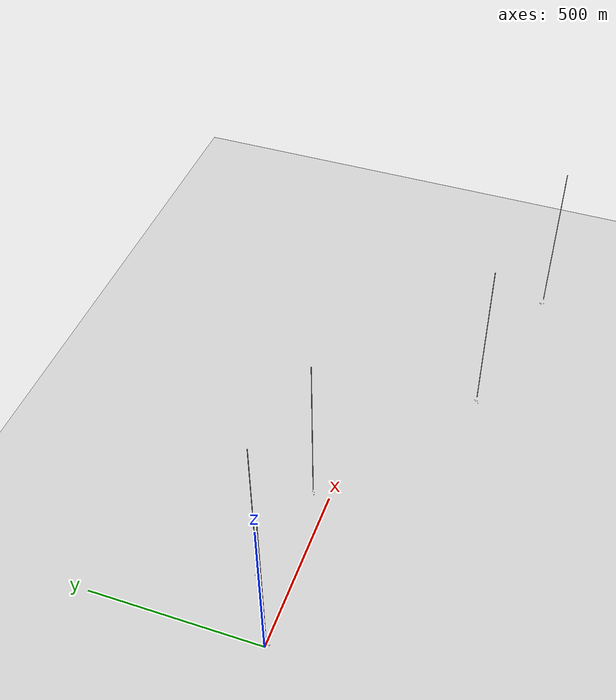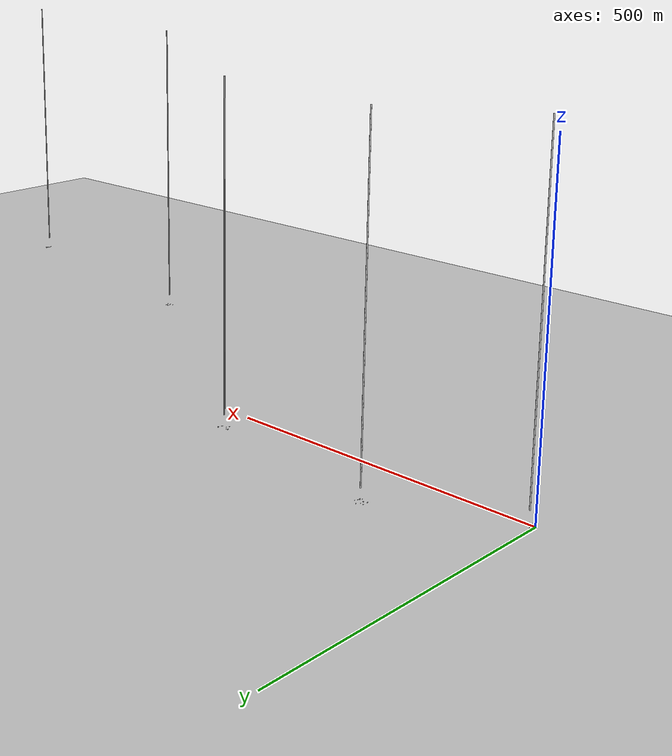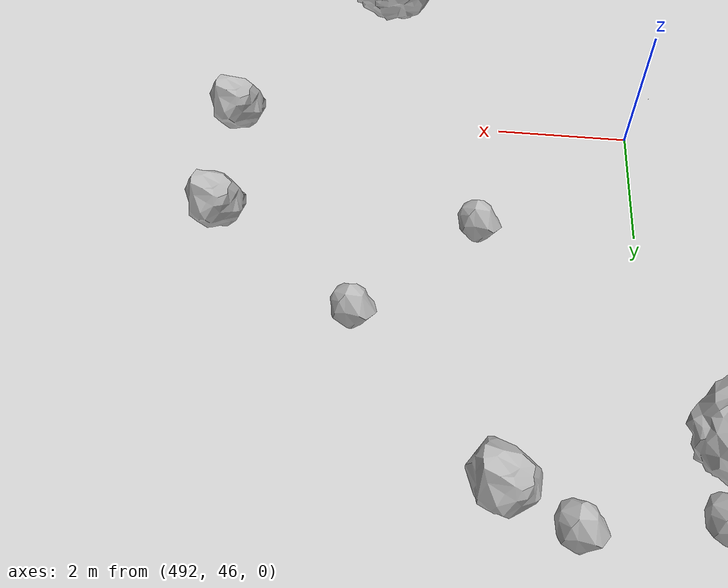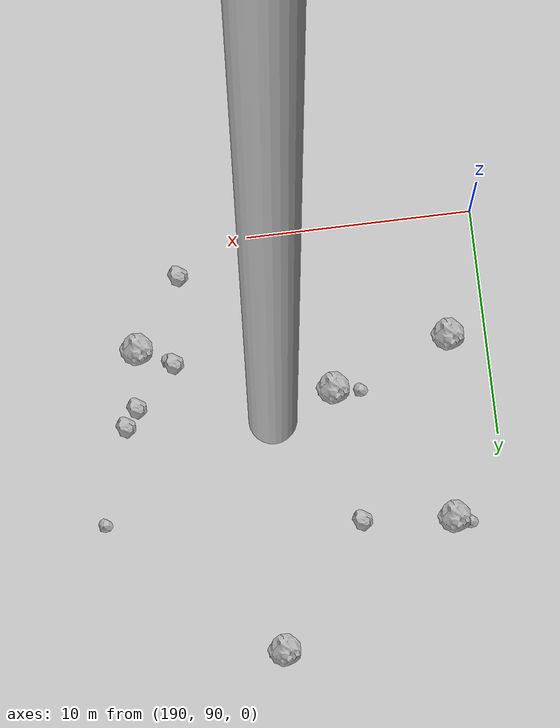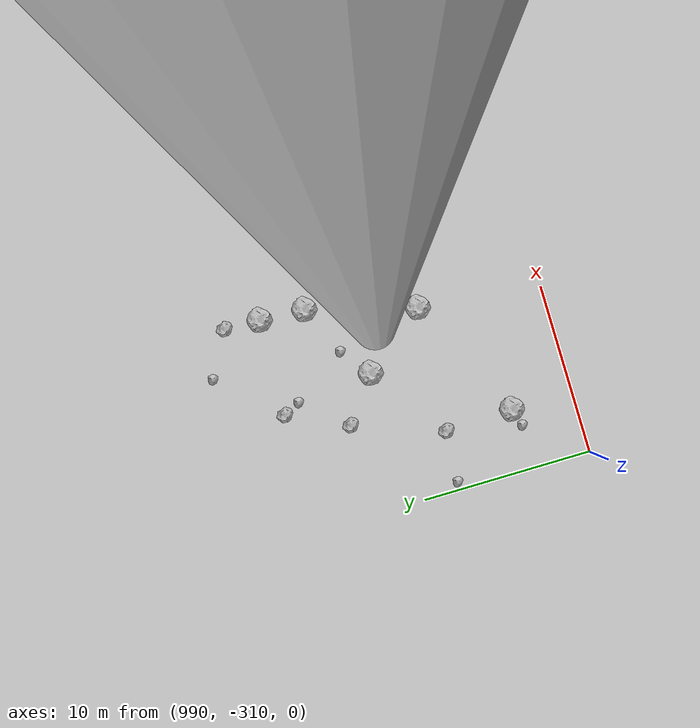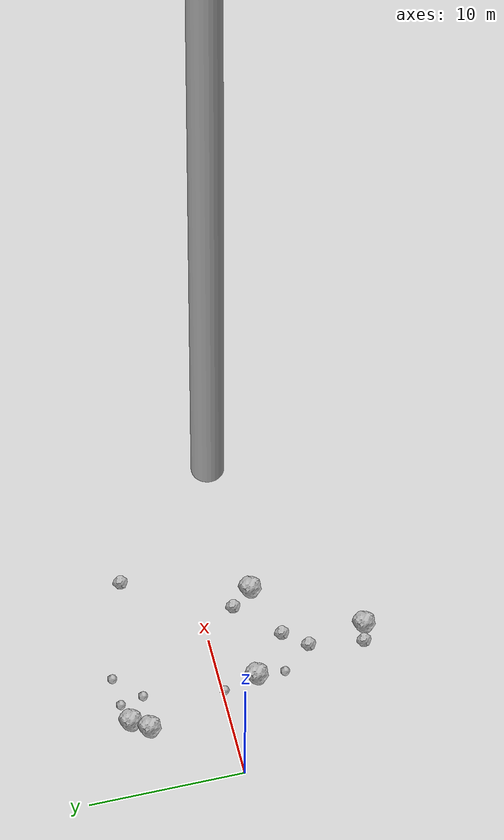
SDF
<?xml version="1.0" ?>
<sdf version="1.6">
  <world name="default">

    <include>
      <uri>model://custom_ground</uri>
    </include>

    <include>
      <uri>model://sun</uri>
    </include>

    <spherical_coordinates>
      <surface_model>EARTH_WGS84</surface_model>
      <latitude_deg>38.161479</latitude_deg>
      <longitude_deg>-122.454630</longitude_deg>
      <elevation>488.0</elevation>
      <heading_deg>90</heading_deg>
    </spherical_coordinates>

    <model name="rock1_0_0">
      <include>
        <uri>model://rock1</uri>
        <pose>4.4730669242563454 5.145440159274859 0.5 0 0 0</pose>
      </include>
    </model>
    <model name="rock1_0_1">
      <include>
        <uri>model://rock1</uri>
        <pose>13.080392406928116 -3.436836346540435 0.5 0 0 0</pose>
      </include>
    </model>
    <model name="rock1_0_2">
      <include>
        <uri>model://rock1</uri>
        <pose>8.8265230074156 -9.911259051683757 0.5 0 0 0</pose>
      </include>
    </model>
    <model name="rock1_0_3">
      <include>
        <uri>model://rock1</uri>
        <pose>6.684869329743652 -2.3511390456406955 0.5 0 0 0</pose>
      </include>
    </model>
    <model name="rock1_0_4">
      <include>
        <uri>model://rock1</uri>
        <pose>5.213222901621728 6.22065750477018 0.5 0 0 0</pose>
      </include>
    </model>
    <model name="rock2_0_0">
      <include>
        <uri>model://rock2</uri>
        <pose>7.590753180466228 -9.619727444378503 0.3 0 0 0</pose>
      </include>
    </model>
    <model name="rock2_0_1">
      <include>
        <uri>model://rock2</uri>
        <pose>11.986489668877427 -2.0636105110681076 0.3 0 0 0</pose>
      </include>
    </model>
    <model name="rock2_0_2">
      <include>
        <uri>model://rock2</uri>
        <pose>15.43205774031434 4.579908907930674 0.3 0 0 0</pose>
      </include>
    </model>
    <model name="rock2_0_3">
      <include>
        <uri>model://rock2</uri>
        <pose>8.11996016548594 -6.105763776695667 0.3 0 0 0</pose>
      </include>
    </model>
    <model name="rock2_0_4">
      <include>
        <uri>model://rock2</uri>
        <pose>9.330489280359288 -4.635068768670161 0.3 0 0 0</pose>
      </include>
    </model>
    <model name="rock3_0_0">
      <include>
        <uri>model://rock3</uri>
        <pose>8.518601515158174 6.621819456572812 0.2 0 0 0</pose>
      </include>
    </model>
    <model name="rock3_0_1">
      <include>
        <uri>model://rock3</uri>
        <pose>6.531831180166298 6.508926890455239 0.2 0 0 0</pose>
      </include>
    </model>
    <model name="rock3_0_2">
      <include>
        <uri>model://rock3</uri>
        <pose>6.847955798489451 4.991919896984797 0.2 0 0 0</pose>
      </include>
    </model>
    <model name="rock3_0_3">
      <include>
        <uri>model://rock3</uri>
        <pose>6.55394483346832 -4.212163859322661 0.2 0 0 0</pose>
      </include>
    </model>
    <model name="rock3_0_4">
      <include>
        <uri>model://rock3</uri>
        <pose>6.058455884311725 -0.1322170560348379 0.2 0 0 0</pose>
      </include>
    </model>
    <model name="rock1_1_0">
      <include>
        <uri>model://rock1</uri>
        <pose>205.48056471701585 94.40432444816383 0.5 0 0 0</pose>
      </include>
    </model>
    <model name="rock1_1_1">
      <include>
        <uri>model://rock1</uri>
        <pose>200.54899761839062 108.44560789591448 0.5 0 0 0</pose>
      </include>
    </model>
    <model name="rock1_1_2">
      <include>
        <uri>model://rock1</uri>
        <pose>191.67816022944663 95.37784691921412 0.5 0 0 0</pose>
      </include>
    </model>
    <model name="rock1_1_3">
      <include>
        <uri>model://rock1</uri>
        <pose>192.372192710279 103.4662224154546 0.5 0 0 0</pose>
      </include>
    </model>
    <model name="rock1_1_4">
      <include>
        <uri>model://rock1</uri>
        <pose>197.0201103670017 97.1483037494111 0.5 0 0 0</pose>
      </include>
    </model>
    <model name="rock2_1_0">
      <include>
        <uri>model://rock2</uri>
        <pose>203.90410051186788 95.21910800896389 0.3 0 0 0</pose>
      </include>
    </model>
    <model name="rock2_1_1">
      <include>
        <uri>model://rock2</uri>
        <pose>196.4230507817273 103.1389572538159 0.3 0 0 0</pose>
      </include>
    </model>
    <model name="rock2_1_2">
      <include>
        <uri>model://rock2</uri>
        <pose>205.76471052042234 96.99663608556894 0.3 0 0 0</pose>
      </include>
    </model>
    <model name="rock2_1_3">
      <include>
        <uri>model://rock2</uri>
        <pose>203.25923252246417 91.35350791225746 0.3 0 0 0</pose>
      </include>
    </model>
    <model name="rock2_1_4">
      <include>
        <uri>model://rock2</uri>
        <pose>206.3393016873747 97.78351905163396 0.3 0 0 0</pose>
      </include>
    </model>
    <model name="rock3_1_0">
      <include>
        <uri>model://rock3</uri>
        <pose>198.21577551227193 90.58148244742969 0.2 0 0 0</pose>
      </include>
    </model>
    <model name="rock3_1_1">
      <include>
        <uri>model://rock3</uri>
        <pose>191.63727798823714 103.72474902237248 0.2 0 0 0</pose>
      </include>
    </model>
    <model name="rock3_1_2">
      <include>
        <uri>model://rock3</uri>
        <pose>207.736090012922 101.98284215546386 0.2 0 0 0</pose>
      </include>
    </model>
    <model name="rock3_1_3">
      <include>
        <uri>model://rock3</uri>
        <pose>195.79971852484726 97.33312556300773 0.2 0 0 0</pose>
      </include>
    </model>
    <model name="rock3_1_4">
      <include>
        <uri>model://rock3</uri>
        <pose>204.113404009692 95.03685963891417 0.2 0 0 0</pose>
      </include>
    </model>
    <model name="rock1_2_0">
      <include>
        <uri>model://rock1</uri>
        <pose>490.98119562080313 51.206969602554544 0.5 0 0 0</pose>
      </include>
    </model>
    <model name="rock1_2_1">
      <include>
        <uri>model://rock1</uri>
        <pose>496.065172260684 42.879739331079556 0.5 0 0 0</pose>
      </include>
    </model>
    <model name="rock1_2_2">
      <include>
        <uri>model://rock1</uri>
        <pose>506.33974619116356 56.786151404963675 0.5 0 0 0</pose>
      </include>
    </model>
    <model name="rock1_2_3">
      <include>
        <uri>model://rock1</uri>
        <pose>508.16508772497286 55.04080024684508 0.5 0 0 0</pose>
      </include>
    </model>
    <model name="rock1_2_4">
      <include>
        <uri>model://rock1</uri>
        <pose>505.18950360679725 48.24027564840585 0.5 0 0 0</pose>
      </include>
    </model>
    <model name="rock2_2_0">
      <include>
        <uri>model://rock2</uri>
        <pose>493.8309254196956 51.93525606440954 0.3 0 0 0</pose>
      </include>
    </model>
    <model name="rock2_2_1">
      <include>
        <uri>model://rock2</uri>
        <pose>498.24334053860247 46.05852220376965 0.3 0 0 0</pose>
      </include>
    </model>
    <model name="rock2_2_2">
      <include>
        <uri>model://rock2</uri>
        <pose>506.38060078433836 49.30919046383089 0.3 0 0 0</pose>
      </include>
    </model>
    <model name="rock2_2_3">
      <include>
        <uri>model://rock2</uri>
        <pose>497.915034553602 55.2778169065879 0.3 0 0 0</pose>
      </include>
    </model>
    <model name="rock2_2_4">
      <include>
        <uri>model://rock2</uri>
        <pose>498.1305785506612 48.10116609001358 0.3 0 0 0</pose>
      </include>
    </model>
    <model name="rock3_2_0">
      <include>
        <uri>model://rock3</uri>
        <pose>495.8765624385231 49.64738610116214 0.2 0 0 0</pose>
      </include>
    </model>
    <model name="rock3_2_1">
      <include>
        <uri>model://rock3</uri>
        <pose>494.24478353006407 48.013547380611286 0.2 0 0 0</pose>
      </include>
    </model>
    <model name="rock3_2_2">
      <include>
        <uri>model://rock3</uri>
        <pose>491.2153286420846 52.099619944460386 0.2 0 0 0</pose>
      </include>
    </model>
    <model name="rock3_2_3">
      <include>
        <uri>model://rock3</uri>
        <pose>492.9159076400191 52.34282147530884 0.2 0 0 0</pose>
      </include>
    </model>
    <model name="rock3_2_4">
      <include>
        <uri>model://rock3</uri>
        <pose>500.628431707198 59.51481637161072 0.2 0 0 0</pose>
      </include>
    </model>
    <model name="rock1_3_0">
      <include>
        <uri>model://rock1</uri>
        <pose>1002.6686129240097 -296.4245417189811 0.5 0 0 0</pose>
      </include>
    </model>
    <model name="rock1_3_1">
      <include>
        <uri>model://rock1</uri>
        <pose>1002.8090810826925 -293.762331944708 0.5 0 0 0</pose>
      </include>
    </model>
    <model name="rock1_3_2">
      <include>
        <uri>model://rock1</uri>
        <pose>993.7157048332467 -306.3366969101119 0.5 0 0 0</pose>
      </include>
    </model>
    <model name="rock1_3_3">
      <include>
        <uri>model://rock1</uri>
        <pose>1000.9165469592995 -302.7707359768682 0.5 0 0 0</pose>
      </include>
    </model>
    <model name="rock1_3_4">
      <include>
        <uri>model://rock1</uri>
        <pose>998.0384367517916 -299.07080486060386 0.5 0 0 0</pose>
      </include>
    </model>
    <model name="rock2_3_0">
      <include>
        <uri>model://rock2</uri>
        <pose>1002.8601181510744 -291.63718995845005 0.3 0 0 0</pose>
      </include>
    </model>
    <model name="rock2_3_1">
      <include>
        <uri>model://rock2</uri>
        <pose>1006.588510157658 -302.476822011481 0.3 0 0 0</pose>
      </include>
    </model>
    <model name="rock2_3_2">
      <include>
        <uri>model://rock2</uri>
        <pose>997.0781621085691 -293.6024433699047 0.3 0 0 0</pose>
      </include>
    </model>
    <model name="rock2_3_3">
      <include>
        <uri>model://rock2</uri>
        <pose>993.5458585210802 -302.34086139829503 0.3 0 0 0</pose>
      </include>
    </model>
    <model name="rock2_3_4">
      <include>
        <uri>model://rock2</uri>
        <pose>995.4294557072627 -297.09861427867344 0.3 0 0 0</pose>
      </include>
    </model>
    <model name="rock3_3_0">
      <include>
        <uri>model://rock3</uri>
        <pose>992.6003969718705 -306.6925471887412 0.2 0 0 0</pose>
      </include>
    </model>
    <model name="rock3_3_1">
      <include>
        <uri>model://rock3</uri>
        <pose>997.5367210643259 -294.5861450894799 0.2 0 0 0</pose>
      </include>
    </model>
    <model name="rock3_3_2">
      <include>
        <uri>model://rock3</uri>
        <pose>1000.2237674185554 -290.19076230878585 0.2 0 0 0</pose>
      </include>
    </model>
    <model name="rock3_3_3">
      <include>
        <uri>model://rock3</uri>
        <pose>999.6917254031456 -297.7461798876289 0.2 0 0 0</pose>
      </include>
    </model>
    <model name="rock3_3_4">
      <include>
        <uri>model://rock3</uri>
        <pose>990.4986206546436 -302.1648967113156 0.2 0 0 0</pose>
      </include>
    </model>
    <model name="rock1_4_0">
      <include>
        <uri>model://rock1</uri>
        <pose>1503.1589623331445 -407.7321150341093 0.5 0 0 0</pose>
      </include>
    </model>
    <model name="rock1_4_1">
      <include>
        <uri>model://rock1</uri>
        <pose>1493.994457516128 -395.62496058006263 0.5 0 0 0</pose>
      </include>
    </model>
    <model name="rock1_4_2">
      <include>
        <uri>model://rock1</uri>
        <pose>1494.363727474889 -395.8482491655624 0.5 0 0 0</pose>
      </include>
    </model>
    <model name="rock1_4_3">
      <include>
        <uri>model://rock1</uri>
        <pose>1499.2785562272893 -403.22462497483144 0.5 0 0 0</pose>
      </include>
    </model>
    <model name="rock1_4_4">
      <include>
        <uri>model://rock1</uri>
        <pose>1498.8358949409596 -390.64160660084343 0.5 0 0 0</pose>
      </include>
    </model>
    <model name="rock2_4_0">
      <include>
        <uri>model://rock2</uri>
        <pose>1498.3955497058246 -391.9496197641179 0.3 0 0 0</pose>
      </include>
    </model>
    <model name="rock2_4_1">
      <include>
        <uri>model://rock2</uri>
        <pose>1502.028924950175 -403.09165820092346 0.3 0 0 0</pose>
      </include>
    </model>
    <model name="rock2_4_2">
      <include>
        <uri>model://rock2</uri>
        <pose>1500.4217886325378 -395.05503424528723 0.3 0 0 0</pose>
      </include>
    </model>
    <model name="rock2_4_3">
      <include>
        <uri>model://rock2</uri>
        <pose>1503.003647521272 -392.40135335741985 0.3 0 0 0</pose>
      </include>
    </model>
    <model name="rock2_4_4">
      <include>
        <uri>model://rock2</uri>
        <pose>1497.2531267697293 -394.65968908840085 0.3 0 0 0</pose>
      </include>
    </model>
    <model name="rock3_4_0">
      <include>
        <uri>model://rock3</uri>
        <pose>1492.7697259194579 -398.3247371476734 0.2 0 0 0</pose>
      </include>
    </model>
    <model name="rock3_4_1">
      <include>
        <uri>model://rock3</uri>
        <pose>1501.5770129325356 -393.80689879185536 0.2 0 0 0</pose>
      </include>
    </model>
    <model name="rock3_4_2">
      <include>
        <uri>model://rock3</uri>
        <pose>1507.6191002664295 -395.7141286318979 0.2 0 0 0</pose>
      </include>
    </model>
    <model name="rock3_4_3">
      <include>
        <uri>model://rock3</uri>
        <pose>1496.1217864558034 -404.55724702425425 0.2 0 0 0</pose>
      </include>
    </model>
    <model name="rock3_4_4">
      <include>
        <uri>model://rock3</uri>
        <pose>1491.6217202148562 -402.6459178339048 0.2 0 0 0</pose>
      </include>
    </model>

    <model name="cylinder_1">
      <static>true</static>
      <link name="link">
        <visual name="visual">
          <geometry>
            <cylinder>
              <radius>1</radius>
              <length>500</length>
            </cylinder>
          </geometry>
        </visual>
      </link>
      <pose>10 0 270 0 0 0</pose>
    </model>

    <model name="cylinder_2">
      <static>true</static>
      <link name="link">
        <visual name="visual">
          <geometry>
            <cylinder>
              <radius>1</radius>
              <length>500</length>
            </cylinder>
          </geometry>
        </visual>
      </link>
      <pose>200 100 270 0 0 0</pose>
    </model>

    <model name="cylinder_3">
      <static>true</static>
      <link name="link">
        <visual name="visual">
          <geometry>
            <cylinder>
              <radius>1</radius>
              <length>500</length>
            </cylinder>
          </geometry>
        </visual>
      </link>
      <pose>500 50 270 0 0 0</pose>
    </model>

    <model name="cylinder_4">
      <static>true</static>
      <link name="link">
        <visual name="visual">
          <geometry>
            <cylinder>
              <radius>1</radius>
              <length>500</length>
            </cylinder>
          </geometry>
        </visual>
      </link>
      <pose>1000 -300 270 0 0 0</pose>
    </model>

    <model name="cylinder_5">
      <static>true</static>
      <link name="link">
        <visual name="visual">
          <geometry>
            <cylinder>
              <radius>1</radius>
              <length>500</length>
            </cylinder>
          </geometry>
        </visual>
      </link>
      <pose>1500 -400 270 0 0 0</pose>
    </model>

  </world>
</sdf>

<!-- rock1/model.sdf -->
<sdf version="1.6">
  <model name="rock1">
    <static>true</static> <!-- Set to true if the model should not move -->
    <pose>0 0 0 0 0 0</pose>

    <!--z offset is 0.5 for full scale-->

    <link name="link">
      <collision name="rock1_collision">
        <geometry>
          <mesh>
            <uri>model://meshes/rock1.dae</uri>
          </mesh>
        </geometry>
      </collision>
      <visual name="rock1_visual">
        <geometry>
          <mesh>
            <uri>model://meshes/rock1.dae</uri>
          </mesh>
        </geometry>
        <material>
          <script>
            <uri>model://materials/scripts/sand_pebbles.material</uri>
            <name>custom_ground/Image</name>
          </script>
        </material>
      </visual>
    </link>
  </model>
</sdf>

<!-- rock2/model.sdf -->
<sdf version="1.6">
  <model name="rock2">
    <static>true</static> <!-- Set to true if the model should not move -->
    <pose>0 0 0 0 0 0</pose>

    <!--z offset is 0.3 for full scale-->

    <link name="link">
      <collision name="rock2_collision">
        <geometry>
          <mesh>
            <uri>model://meshes/rock2.dae</uri>
          </mesh>
        </geometry>
      </collision>
      <visual name="rock2_visual">
        <geometry>
          <mesh>
            <uri>model://meshes/rock2.dae</uri>
          </mesh>
        </geometry>
        <material>
          <script>
            <uri>model://materials/scripts/sand_pebbles.material</uri>
            <name>custom_ground/Image</name>
          </script>
        </material>
      </visual>
    </link>
  </model>
</sdf>

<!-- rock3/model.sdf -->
<sdf version="1.6">
  <model name="rock3">
    <static>true</static> <!-- Set to true if the model should not move -->
    <pose>0 0 0 0 0 0</pose>

    <!--z offset is 0.2 for full scale-->

    <link name="link">
      <collision name="rock3_collision">
        <geometry>
          <mesh>
            <uri>model://meshes/rock3.dae</uri>
          </mesh>
        </geometry>
      </collision>
      <visual name="rock3_visual">
        <geometry>
          <mesh>
            <uri>model://meshes/rock3.dae</uri>
          </mesh>
        </geometry>
        <material>
          <script>
            <uri>model://materials/scripts/sand_pebbles.material</uri>
            <name>custom_ground/Image</name>
          </script>
        </material>
      </visual>
    </link>
  </model>
</sdf>

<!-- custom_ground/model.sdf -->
<sdf version="1.6">
  <model name="custom_ground">
    <static>true</static> <!-- Ground is static and immovable -->
    <link name="ground_link">
      <pose>240 0 0 0 0 0</pose> <!-- Position and orientation relative to the world -->
      <!-- Visual Representation -->
      <visual name="ground_visual">
        <geometry>
          <plane>
            <normal>0 0 1</normal> <!-- Upward facing plane -->
            <size>500 500</size> <!-- Size of the plane -->
          </plane>
        </geometry>
        <material>
          <script>
            <uri>model://materials/scripts/sand_pebbles.material</uri>
            <name>custom_ground/Image</name>
          </script>
        </material>
      </visual>

      <!-- Collision Representation -->
      <collision name="ground_collision">
        <geometry>
          <plane>
            <normal>0 0 1</normal>
            <size>100 100</size>
          </plane>
        </geometry>
      </collision>

    </link>
  </model>
</sdf>
